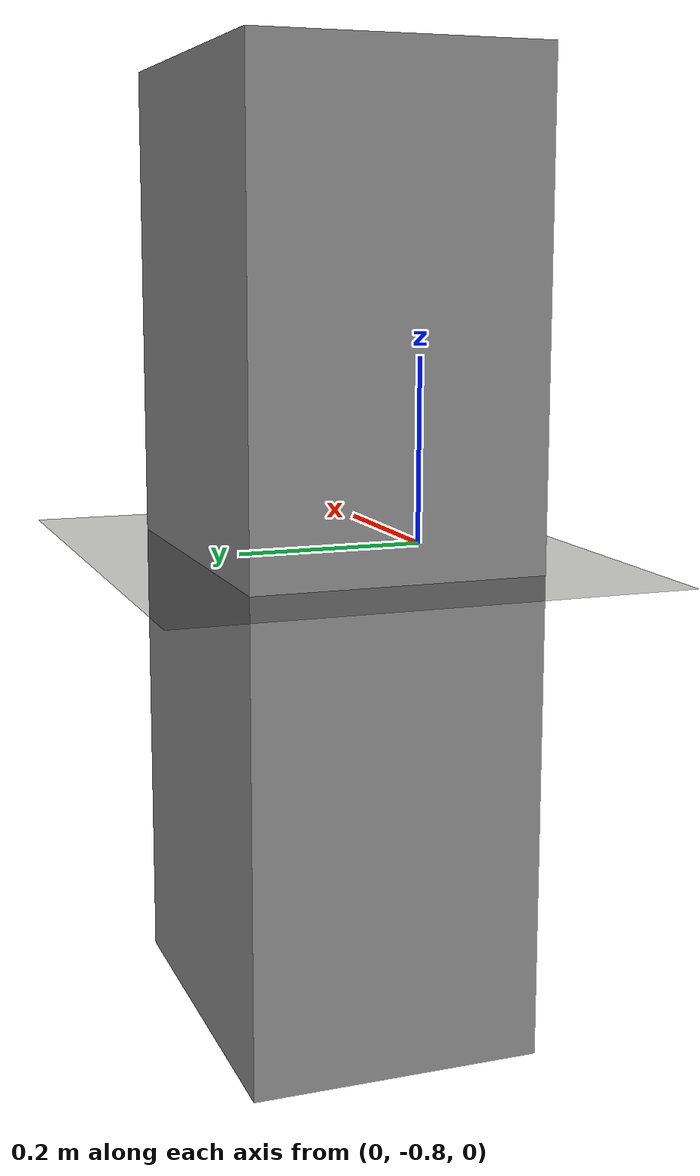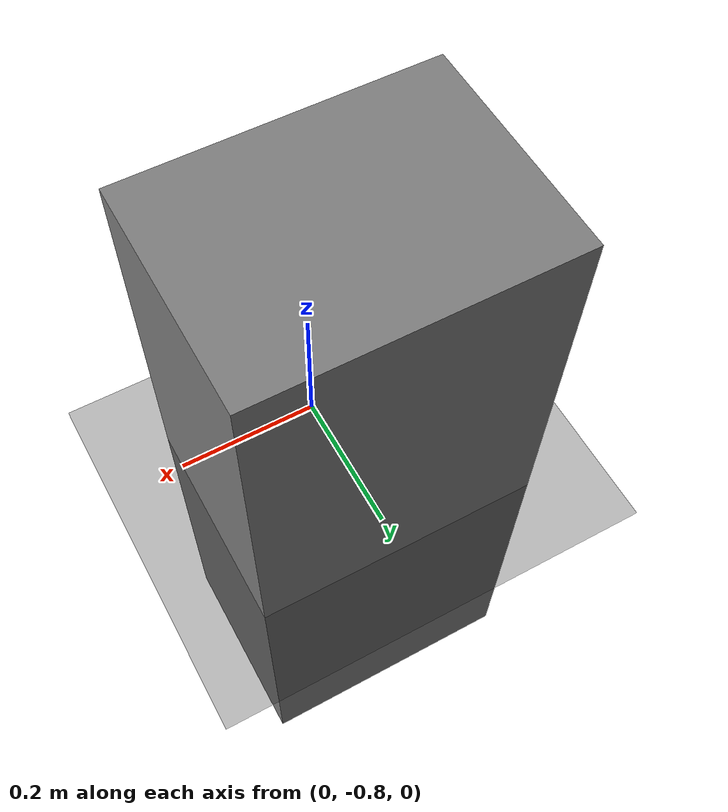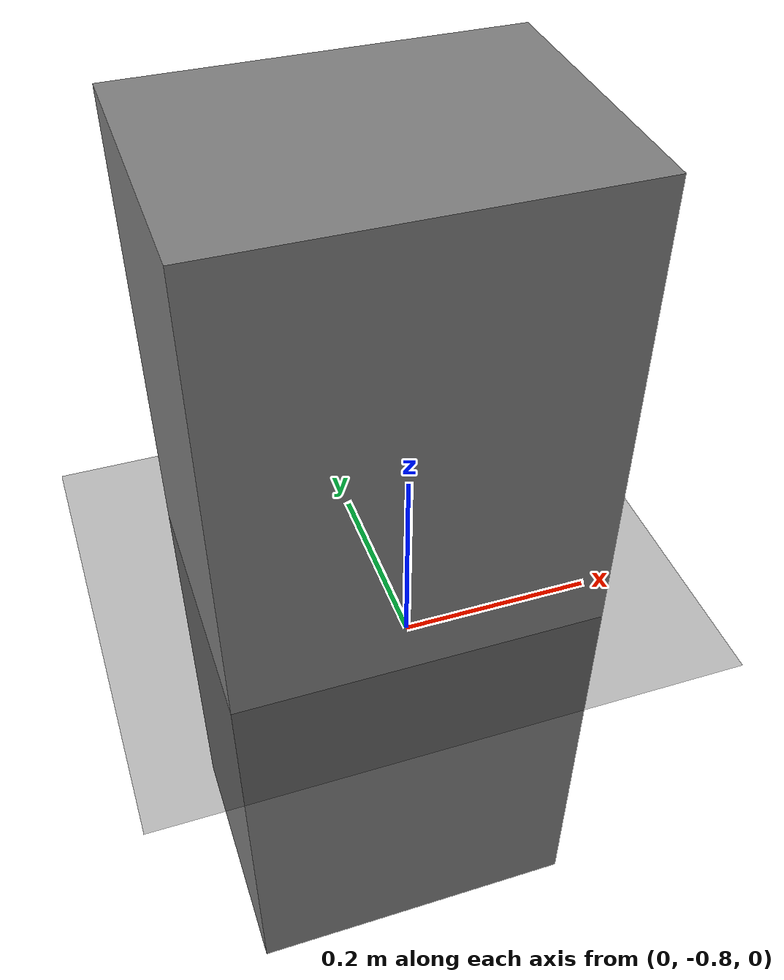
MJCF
<mujoco model="base">

  <statistic center="0 0 .75" extent="1.2" meansize="0.05"/>

  <visual>
    <headlight diffuse="0.6 0.6 0.6" ambient="0.3 0.3 0.3" specular="0 0 0"/>
    <rgba haze="0.15 0.25 0.35 1"/>
    <global azimuth="-120" elevation="-20"/>
  </visual>

  <asset>
    <material name="floor" rgba=".1 .1 .1 1" reflectance="0.1"/>
    <material name="object" rgba=".2 .2 .2 1"/>
    <texture type="skybox" builtin="gradient" rgb1="0.44 0.80 1.00" rgb2="1 1 1" width="512" height="3072"/>
  </asset>

  <worldbody>
    <light pos="0 0 1.5" dir="0 0 -1" directional="true"/>
    <geom name="floor" size="0 0 0.05" type="plane" material="floor"/>
    <body name="table" pos="0 -0.7 0">
      <geom type="box" size=".2 .15 .5" mass="1" rgba="0.5 0.5 0.5 1"/>
    </body>
  </worldbody>
</mujoco>
